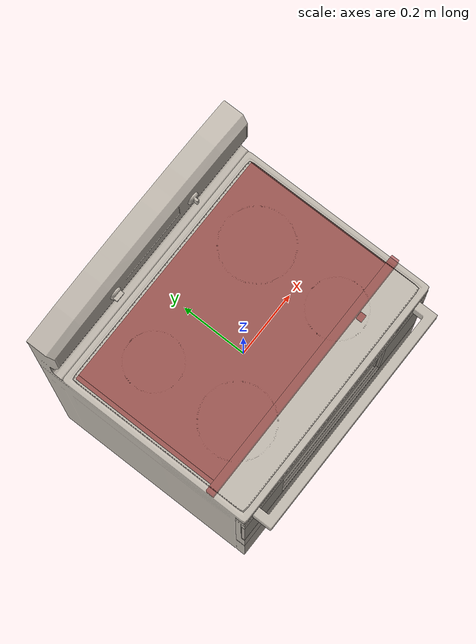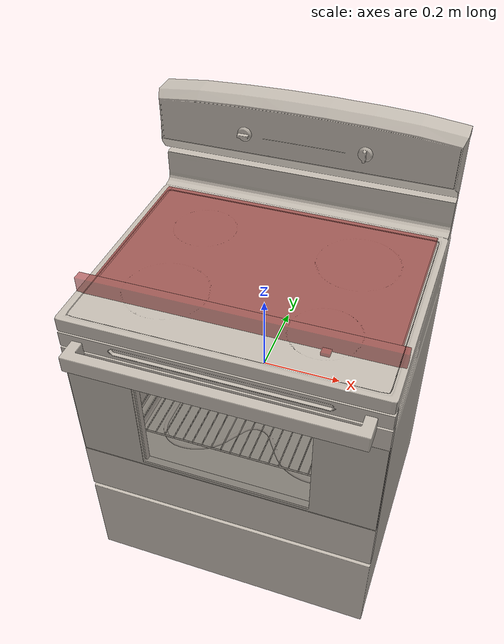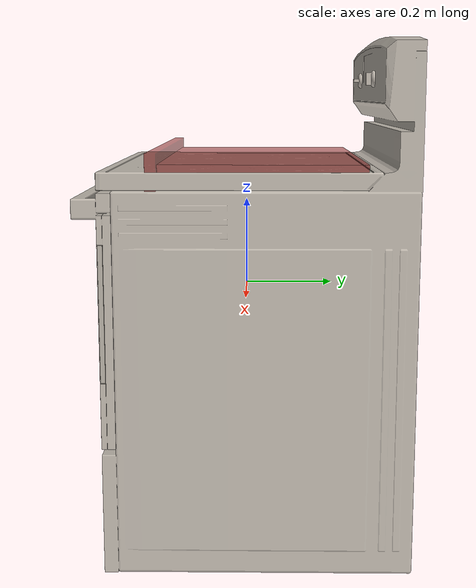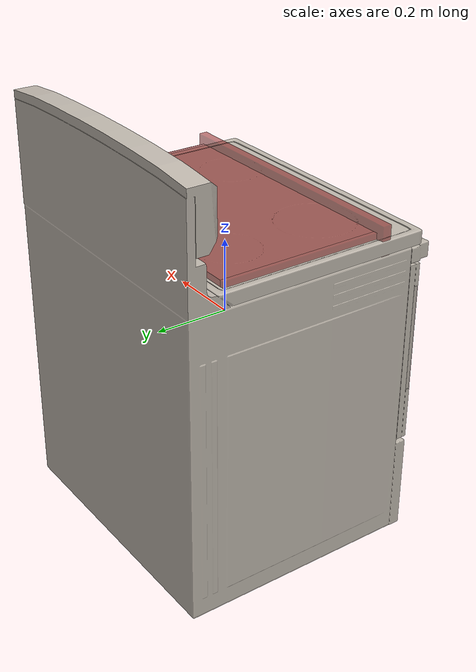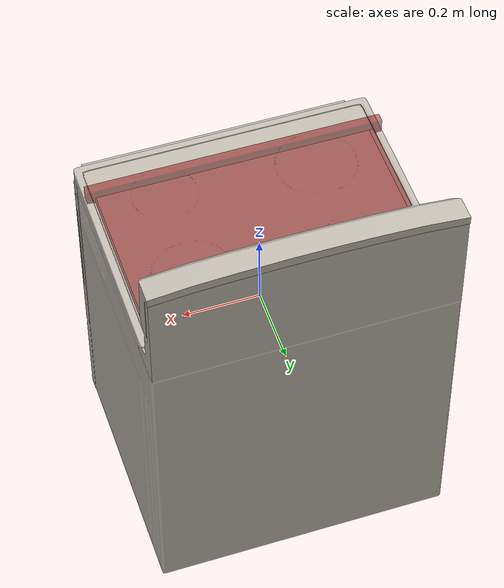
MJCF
<?xml version='1.0' encoding='UTF-8'?>
<mujoco model="model">
  <option timestep="0.002" gravity="0.0 0.0 -9.81"/>
  <compiler angle="radian"/>
  <asset>
    <mesh file="visuals/door.obj" name="door_vis"/>
    <mesh file="visuals/door_Clear.obj" name="door_Clear_vis"/>
    <mesh file="visuals/knob_temp.obj" name="knob_temp_vis"/>
    <mesh file="visuals/knob_time.obj" name="knob_time_vis"/>
    <mesh file="visuals/Body001.obj" name="Body001_vis"/>
    <mesh file="visuals/rack0.obj" name="rack0_vis"/>
    <texture file="visuals/T_BC001.png" name="Body001_material" type="2d"/>
    <material name="Body001_material" rgba="1 1 1 1.0" texture="Body001_material" shininess="0.1" specular="2"/>
    <texture file="visuals/T_BC001.png" name="door_material" type="2d"/>
    <material name="door_material" rgba="1 1 1 1.0" texture="door_material" shininess="0.1" specular="2"/>
    <texture file="visuals/T_BC001.png" name="door_Clear_material" type="2d"/>
    <material name="door_Clear_material" rgba="1 1 1 0.699999988079071" texture="door_Clear_material" shininess="0.1" specular="2"/>
    <texture file="visuals/T_BC001.png" name="knob_temp_material" type="2d"/>
    <material name="knob_temp_material" rgba="1 1 1 1.0" texture="knob_temp_material" shininess="0.1" specular="2"/>
    <texture file="visuals/T_BC001.png" name="knob_time_material" type="2d"/>
    <material name="knob_time_material" rgba="1 1 1 1.0" texture="knob_time_material" shininess="0.1" specular="2"/>
    <texture file="visuals/T_BC001.png" name="rack0_material" type="2d"/>
    <material name="rack0_material" rgba="1 1 1 1.0" texture="rack0_material" shininess="0.1" specular="2"/>
  </asset>
  <default>
    <default class="visual">
      <geom conaffinity="0" contype="0" group="1" type="mesh"/>
    </default>
    <default class="collision">
      <geom group="0" rgba="0.5 0 0 0.5"/>
    </default>
    <default class="spawn">
      <geom group="0" rgba="1 1 1 0.5" contype="0" conaffinity="0"/>
      <site group="0" rgba="1 1 1 0.5"/>
    </default>
    <default class="region">
      <geom group="1" conaffinity="0" contype="0" rgba="0 1 0 0"/>
    </default>
  </default>
  <worldbody>
    <body>
      <body name="object">
        <geom mesh="Body001_vis" type="mesh" solimp="0.998 0.998 0.001" solref="0.001 1" friction="0.95 0.3 0.1" class="visual" material="Body001_material"/>
        <geom class="collision" type="box" pos="-0.33505768 0.03734199 -0.01160994" size="0.019283024594187737 0.21519224345684052 0.3147348165512085" quat="1.0 0.0 0.0 0.0"/>
        <geom class="collision" type="box" pos="0.33195981 0.03734194 -0.01160994" size="0.02430092729628086 0.21519237756729126 0.31473508477211" quat="1.0 0.0 0.0 0.0"/>
        <geom class="collision" type="box" pos="0.00534328 0.03734175 -0.29232646" size="0.34893864393234253 0.2151922881603241 0.03400268033146858" quat="1.0 0.0 0.0 0.0"/>
        <geom class="collision" type="box" pos="0.00534331 0.03734171 0.23121967" size="0.34893864393234253 0.21519242227077484 0.07190866023302078" quat="1.0 0.0 0.0 0.0"/>
        <geom class="collision" type="box" pos="-0.00011246 -0.18920712 0.25214111" size="0.3764316141605377 0.011466951109468937 0.07451142370700836" quat="1.0 0.0 0.0 0.0"/>
        <geom class="collision" type="box" pos="-0.31837842 0.03755784 -0.03748379" size="0.010815974324941635 0.19568881392478943 0.005391944199800491" quat="1.0 0.0 0.0 0.0"/>
        <geom class="collision" type="box" pos="0.30868345 0.03755784 -0.03748379" size="0.010815974324941635 0.19568897783756256 0.005391949322074652" quat="1.0 0.0 0.0 0.0"/>
        <geom class="collision" type="box" pos="0.00534331 0.23777639 0.01949205" size="0.34893864393234253 0.014759241603314877 0.2836351990699768" quat="1.0 0.0 0.0 0.0"/>
        <body name="door">
          <joint axis="1.0 0.0 0.0" pos="2.078e-05 -0.20137755361799659 -0.31849180957141876" limited="true" name="door_joint" range="0.0 1.15" type="hinge" damping="1" frictionloss="1" armature="1" stiffness="2"/>
          <geom mesh="door_vis" type="mesh" solimp="0.998 0.998 0.001" solref="0.001 1" friction="0.95 0.3 0.1" class="visual" material="door_material"/>
          <geom class="collision" type="box" pos="0.00157031 -0.18669690 -0.07338551" size="0.35471275448799133 0.007204413879662752 0.242497980594635" quat="1.0 0.0 0.0 0.0"/>
          <geom class="collision" type="box" pos="0.00002078 -0.19795781 -0.07539741" size="0.37640616297721863 0.0034197436179965734 0.24309439957141876" quat="1.0 0.0 0.0 0.0" name="door_main"/>
          <geom class="collision" type="box" pos="-0.30970249 -0.21283459 0.15632437" size="0.005096600390970707 0.011907828040421009 0.014070375822484493" quat="1.0 0.0 0.0 0.0"/>
          <geom class="collision" type="box" pos="0.31947091 -0.21283459 0.15632437" size="0.005096600390970707 0.011907828040421009 0.014070375822484493" quat="1.0 0.0 0.0 0.0"/>
          <geom class="collision" type="box" pos="0.00075840 -0.23801475 0.15626089" size="0.330466628074646 0.017917407676577568 0.017917409539222717" quat="1.0 0.0 0.0 0.0" name="door_handle_main"/>
          <body name="door_Clear">
            <geom mesh="door_Clear_vis" type="mesh" solimp="0.998 0.998 0.001" solref="0.001 1" friction="0.95 0.3 0.1" class="visual" material="door_Clear_material"/>
          </body>
        </body>
        <body name="knob_temp">
          <joint axis="0.0 1.0 0.0" pos="0.20950517 -0.21150000 0.26849842" limited="true" name="knob_temp_joint" range="0.0 5.585053606381854" type="hinge" damping="0.05" armature="1" frictionloss="0.75"/>
          <geom mesh="knob_temp_vis" type="mesh" solimp="0.998 0.998 0.001" solref="0.001 1" friction="0.95 0.3 0.1" class="visual" material="knob_temp_material"/>
          <geom class="collision" type="box" pos="0.20932555 -0.21096106 0.26867267" size="0.010200371034443378 0.008497285656630993 0.02675803191959858" quat="1.0 0.0 0.0 0.0" name="knob_temp_main" friction="100 0.5 0.01"/>
        </body>
        <body name="knob_time">
          <joint axis="0.0 1.0 0.0" pos="-0.21009600 -0.21150000 0.26849213" limited="true" name="knob_time_joint" range="0.0 5.235987755982989" type="hinge" damping="0.05" armature="1" frictionloss="0.75"/>
          <geom mesh="knob_time_vis" type="mesh" solimp="0.998 0.998 0.001" solref="0.001 1" friction="0.95 0.3 0.1" class="visual" material="knob_time_material"/>
          <geom class="collision" type="box" pos="-0.21009015 -0.21096106 0.26867270" size="0.02675819955766201 0.008497263304889202 0.01020028255879879" quat="1.0 0.0 0.0 0.0" name="knob_time_main" friction="100 0.5 0.01"/>
        </body>
        <body name="rack0">
          <geom class="region" name="reg_rack0" type="box" pos="-0.0038322650000000014 0.015266425 0.06627683999999999" size="0.300044925 0.162804915 0.08700524"/>
          <joint axis="0.0 -1.0 0.0" pos="-0.00429360 0.01529943 -0.02903694" limited="true" name="rack0_joint" range="0.0 0.29" type="slide" damping="1" frictionloss="1" armature=".01" stiffness="0.05"/>
          <geom mesh="rack0_vis" type="mesh" solimp="0.998 0.998 0.001" solref="0.001 1" friction="0.95 0.3 0.1" class="visual" material="rack0_material"/>
          <geom class="collision" type="box" pos="-0.00444339 0.01536123 -0.02885869" size="0.3110940158367157 0.1721295863389969 0.002637086668983102" quat="1.0 0.0 0.0 0.0"/>
        </body>
        <geom class="region" name="reg_int" type="box" pos="-0.004039569999999992 0.022458085000000003 -0.049980264999999996" size="0.30675131 0.195501945 0.203397515"/>
        <geom class="region" name="reg_main" type="box" pos="9.999999994736442e-09 0.02507999999999999 -0.0021069999999999978" size="0.37758724 0.22845524 0.32975994"/>
      </body>
    </body>
  </worldbody>
  <actuator>
    <motor name="door_joint_actuator" joint="door_joint" gear="50"/>
    <motor name="knob_temp_joint_actuator" joint="knob_temp_joint" gear="50"/>
    <motor name="knob_time_joint_actuator" joint="knob_time_joint" gear="50"/>
    <motor name="rack0_joint_actuator" joint="rack0_joint" gear="50"/>
  </actuator>
</mujoco>
